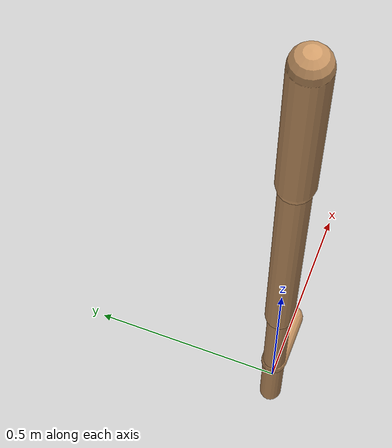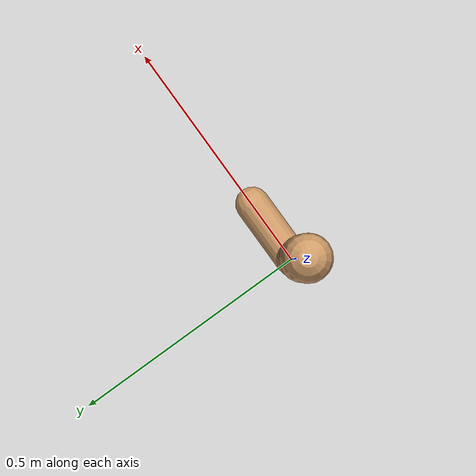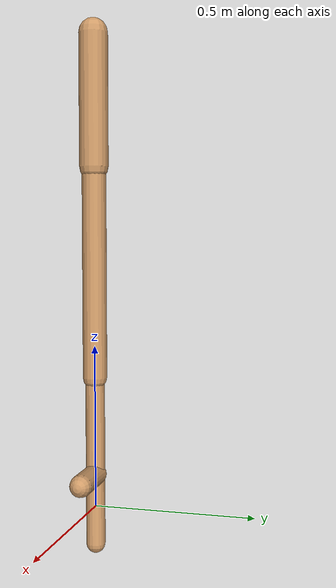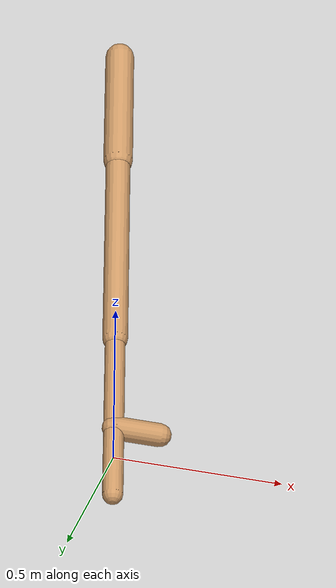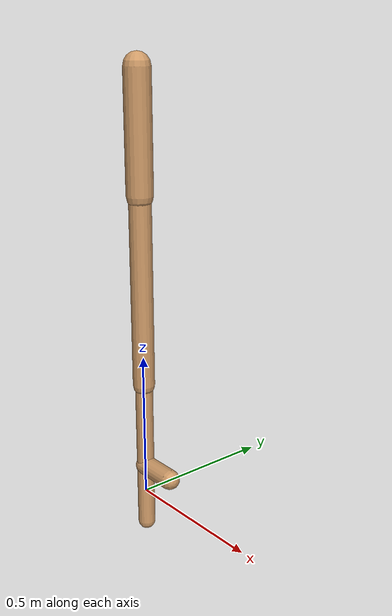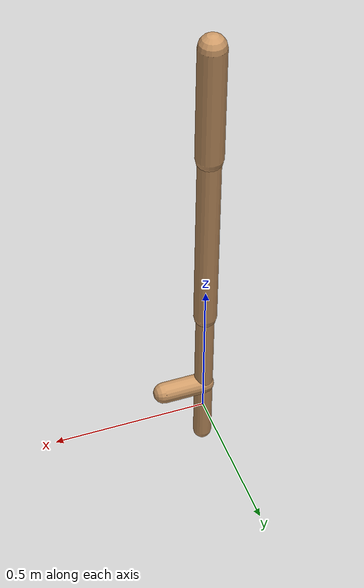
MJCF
<mujoco model="walker2d">
  <compiler angle="degree" coordinate="global" inertiafromgeom="true" />
  <default>
    <joint armature="0.01" damping=".1" limited="true" />
    <geom conaffinity="0" condim="3" contype="1" density="1000" friction="0.8 .1 .1" rgba="0.8 0.6 .4 1" />
  </default>
  <option integrator="RK4" timestep="0.002" />
  <worldbody>

    <body name="torso" pos="0 0 0.4149870756023277">
      <joint armature="0" axis="1 0 0" damping="0" limited="false" name="ignorex" pos="0 0 0" stiffness="0" type="slide" />
      <joint armature="0" axis="0 0 1" damping="0" limited="false" name="ignorez" pos="0 0 0" ref="1.25" stiffness="0" type="slide" />
      <joint armature="0" axis="0 1 0" damping="0" limited="false" name="ignorey" pos="0 0 0" stiffness="0" type="hinge" />
      <geom fromto="0 0 1.45 0 0 1.05" name="torso_geom" size="0.044124514732070325" type="capsule" />
      <body name="thigh">
        <joint axis="0 -1 0" name="thigh_joint" pos="0 0 1.05" range="-150 0" type="hinge" />
        <geom fromto="0.0 0.0 1.05 0.0 0.0 0.4034271747146868" name="thigh_geom" size="0.03689654457237799" type="capsule" />
        <body name="leg" pos="0.0 0.0 -0.19657282528531317">
          <joint axis="0 -1 0" name="leg_joint" pos="0 0 0.6" range="-150 0" type="hinge" />
          <geom fromto="0.0 0.0 0.6 0.0 0.0 -0.11841425031701458" name="leg_geom" size="0.02951723565790239" type="capsule" />
          <body name="foot" pos="0.0 0.0 -0.21841425031701459">
            <joint axis="0 -1 0" name="foot_joint" pos="0 0 0.1" range="-45 45" type="hinge" />
            <geom fromto="0.0 0.0 0.1 0.13541186342501033 0.0 0.1" name="foot_geom" size="0.03404127375534498" type="capsule" />
          </body>
        </body>
      </body>

      <body name="thigh_left">
        <joint axis="0 -1 0" name="thigh_left_joint" pos="0 0 1.05" range="-150 0" type="hinge" />
        <geom fromto="0.0 0.0 1.05 0.0 0.0 0.4034271747146868" name="thigh_left_geom" rgba=".7 .3 .6 1" size="0.03689654457237799" type="capsule" />
        <body name="leg_left" pos="0.0 0.0 -0.19657282528531317">
          <joint axis="0 -1 0" name="leg_left_joint" pos="0 0 0.6" range="-150 0" type="hinge" />
          <geom fromto="0.0 0.0 0.6 0.0 0.0 -0.11841425031701458" name="leg_left_geom" rgba=".7 .3 .6 1" size="0.02951723565790239" type="capsule" />
          <body name="foot_left" pos="0.0 0.0 -0.21841425031701459">
            <joint axis="0 -1 0" name="foot_left_joint" pos="0 0 0.1" range="-45 45" type="hinge" />
            <geom fromto="0.0 0.0 0.1 0.13541186342501033 0.0 0.1" name="foot_left_geom" rgba=".7 .3 .6 1" size="0.03404127375534498" type="capsule" />
          </body>
        </body>
      </body>
    </body>
  </worldbody>
  <actuator>

    <motor ctrllimited="true" ctrlrange="-1.0 1.0" gear="100" joint="thigh_joint" />
    <motor ctrllimited="true" ctrlrange="-1.0 1.0" gear="100" joint="leg_joint" />
    <motor ctrllimited="true" ctrlrange="-1.0 1.0" gear="100" joint="foot_joint" />
    <motor ctrllimited="true" ctrlrange="-1.0 1.0" gear="100" joint="thigh_left_joint" />
    <motor ctrllimited="true" ctrlrange="-1.0 1.0" gear="100" joint="leg_left_joint" />
    <motor ctrllimited="true" ctrlrange="-1.0 1.0" gear="100" joint="foot_left_joint" />

  </actuator>
</mujoco>
